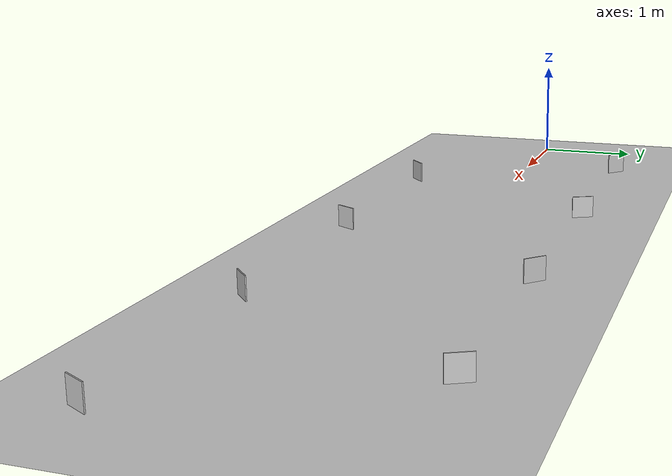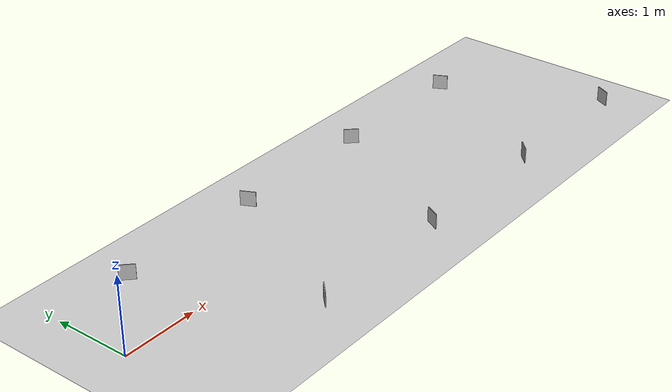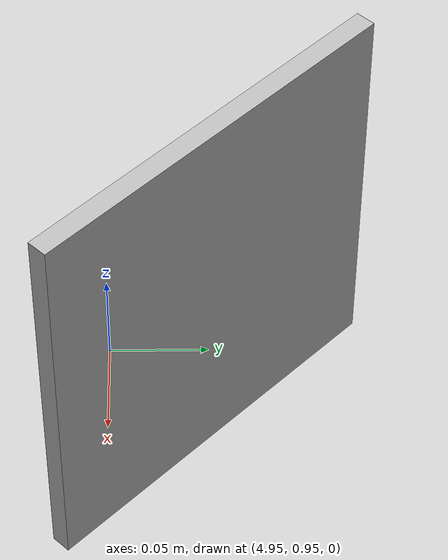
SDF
<sdf version="1.9">
 <world name="whycode_1_world">
  <scene><shadows>false</shadows></scene>
  <light name="sun_direct" type="directional">
   <cast_shadows>false</cast_shadows>
   <pose>0 0 10 0 0 0</pose>
   <diffuse>1 1 1 1</diffuse>
   <specular>0.2 0.2 0.2 1</specular>
   <direction>-0.5 0.1 -1</direction>
  </light>
  <plugin filename="gz-sim-physics-system" name="gz::sim::systems::Physics"/>
  <plugin filename="gz-sim-scene-broadcaster-system" name="gz::sim::systems::SceneBroadcaster">
   <dynamic_pose_hertz>30</dynamic_pose_hertz>
   <state_hertz>30</state_hertz>
  </plugin>
  <plugin filename="gz-sim-sensors-system" name="gz::sim::systems::Sensors">
   <render_engine>ogre2</render_engine>
  </plugin>
  <plugin filename="gz-sim-user-commands-system" name="gz::sim::systems::UserCommands"/>
  <include><uri>https://fuel.gazebosim.org/1.0/OpenRobotics/models/Ground%20Plane</uri></include>
  <include><uri>model://WhyCode_1</uri><pose>1 1 0.1 0 1.57 3.927</pose></include>
  <include><uri>model://WhyCode_2</uri><pose>2 -1 0.1 0 1.57 5.498</pose></include>
  <include><uri>model://WhyCode_3</uri><pose>3 1 0.1 0 1.57 3.605</pose></include>
  <include><uri>model://WhyCode_4</uri><pose>4 -1 0.1 0 1.57 5.819</pose></include>
  <include><uri>model://WhyCode_5</uri><pose>5 1 0.1 0 1.57 3.927</pose></include>
  <include><uri>model://WhyCode_6</uri><pose>6 -1 0.1 0 1.57 5.498</pose></include>
  <include><uri>model://WhyCode_7</uri><pose>7 1 0.1 0 1.57 3.605</pose></include>
  <include><uri>model://WhyCode_8</uri><pose>8 -1 0.1 0 1.57 5.819</pose></include>
 </world>
</sdf>

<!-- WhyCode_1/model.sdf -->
<sdf version='1.9'>
  <model name='WhyCode_1'>
    <link name='main'>
    <pose>0 0 0 0 0 0</pose>
      <visual name='main_Visual'>
        <geometry>
          <box>
          <size>0.2 0.2 0.01</size>
          </box>
        </geometry>
                      <material>
             <pbr>
               <metal>
                 <albedo_map>model://WhyCode_1/materials/textures/whycode_1.png</albedo_map>
      <emissive_map>model://WhyCode_1/materials/textures/whycode_1.png</emissive_map>
                 <roughness>1.0</roughness>
                 <metalness>0.0</metalness>
               </metal>
             </pbr>
           </material>
      </visual>
     </link>
    <static>1</static>
  </model>
</sdf>

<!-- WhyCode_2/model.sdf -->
<sdf version='1.9'>
  <model name='WhyCode_2'>
    <link name='main'>
    <pose>0 0 0 0 0 0</pose>
      <visual name='main_Visual'>
        <geometry>
          <box>
          <size>0.2 0.2 0.01</size>
          </box>
        </geometry>
                      <material>
             <pbr>
               <metal>
                 <albedo_map>model://WhyCode_2/materials/textures/whycode_2.png</albedo_map>
      <emissive_map>model://WhyCode_2/materials/textures/whycode_2.png</emissive_map>
                 <roughness>1.0</roughness>
                 <metalness>0.0</metalness>
               </metal>
             </pbr>
           </material>
      </visual>
     </link>
    <static>1</static>
  </model>
</sdf>

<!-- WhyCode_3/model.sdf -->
<sdf version='1.9'>
  <model name='WhyCode_3'>
    <link name='main'>
    <pose>0 0 0 0 0 0</pose>
      <visual name='main_Visual'>
        <geometry>
          <box>
          <size>0.2 0.2 0.01</size>
          </box>
        </geometry>
                      <material>
             <pbr>
               <metal>
                 <albedo_map>model://WhyCode_3/materials/textures/whycode_3.png</albedo_map>
      <emissive_map>model://WhyCode_3/materials/textures/whycode_3.png</emissive_map>
                 <roughness>1.0</roughness>
                 <metalness>0.0</metalness>
               </metal>
             </pbr>
           </material>
      </visual>
     </link>
    <static>1</static>
  </model>
</sdf>

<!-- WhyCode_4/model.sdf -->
<sdf version='1.9'>
  <model name='WhyCode_4'>
    <link name='main'>
    <pose>0 0 0 0 0 0</pose>
      <visual name='main_Visual'>
        <geometry>
          <box>
          <size>0.2 0.2 0.01</size>
          </box>
        </geometry>
                      <material>
             <pbr>
               <metal>
                 <albedo_map>model://WhyCode_4/materials/textures/whycode_4.png</albedo_map>
      <emissive_map>model://WhyCode_4/materials/textures/whycode_4.png</emissive_map>
                 <roughness>1.0</roughness>
                 <metalness>0.0</metalness>
               </metal>
             </pbr>
           </material>
      </visual>
     </link>
    <static>1</static>
  </model>
</sdf>

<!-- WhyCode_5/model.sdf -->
<sdf version='1.9'>
  <model name='WhyCode_5'>
    <link name='main'>
    <pose>0 0 0 0 0 0</pose>
      <visual name='main_Visual'>
        <geometry>
          <box>
          <size>0.2 0.2 0.01</size>
          </box>
        </geometry>
                      <material>
             <pbr>
               <metal>
                 <albedo_map>model://WhyCode_5/materials/textures/whycode_5.png</albedo_map>
      <emissive_map>model://WhyCode_5/materials/textures/whycode_5.png</emissive_map>
                 <roughness>1.0</roughness>
                 <metalness>0.0</metalness>
               </metal>
             </pbr>
           </material>
      </visual>
     </link>
    <static>1</static>
  </model>
</sdf>

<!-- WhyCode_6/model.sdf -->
<sdf version='1.9'>
  <model name='WhyCode_6'>
    <link name='main'>
    <pose>0 0 0 0 0 0</pose>
      <visual name='main_Visual'>
        <geometry>
          <box>
          <size>0.2 0.2 0.01</size>
          </box>
        </geometry>
                      <material>
             <pbr>
               <metal>
                 <albedo_map>model://WhyCode_6/materials/textures/whycode_6.png</albedo_map>
      <emissive_map>model://WhyCode_6/materials/textures/whycode_6.png</emissive_map>
                 <roughness>1.0</roughness>
                 <metalness>0.0</metalness>
               </metal>
             </pbr>
           </material>
      </visual>
     </link>
    <static>1</static>
  </model>
</sdf>

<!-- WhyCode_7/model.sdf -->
<sdf version='1.9'>
  <model name='WhyCode_7'>
    <link name='main'>
    <pose>0 0 0 0 0 0</pose>
      <visual name='main_Visual'>
        <geometry>
          <box>
          <size>0.2 0.2 0.01</size>
          </box>
        </geometry>
                      <material>
             <pbr>
               <metal>
                 <albedo_map>model://WhyCode_7/materials/textures/whycode_7.png</albedo_map>
      <emissive_map>model://WhyCode_7/materials/textures/whycode_7.png</emissive_map>
                 <roughness>1.0</roughness>
                 <metalness>0.0</metalness>
               </metal>
             </pbr>
           </material>
      </visual>
     </link>
    <static>1</static>
  </model>
</sdf>

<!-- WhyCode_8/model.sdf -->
<sdf version='1.9'>
  <model name='WhyCode_8'>
    <link name='main'>
    <pose>0 0 0 0 0 0</pose>
      <visual name='main_Visual'>
        <geometry>
          <box>
          <size>0.2 0.2 0.01</size>
          </box>
        </geometry>
                      <material>
             <pbr>
               <metal>
                 <albedo_map>model://WhyCode_8/materials/textures/whycode_8.png</albedo_map>
      <emissive_map>model://WhyCode_8/materials/textures/whycode_8.png</emissive_map>
                 <roughness>1.0</roughness>
                 <metalness>0.0</metalness>
               </metal>
             </pbr>
           </material>
      </visual>
     </link>
    <static>1</static>
  </model>
</sdf>
